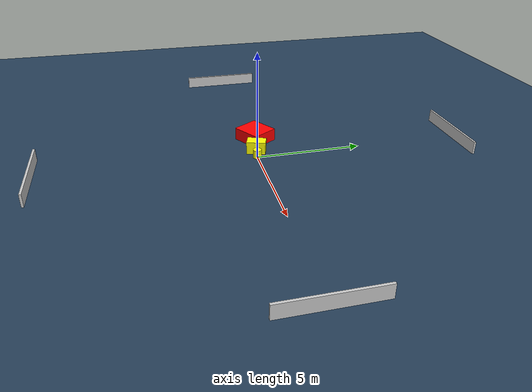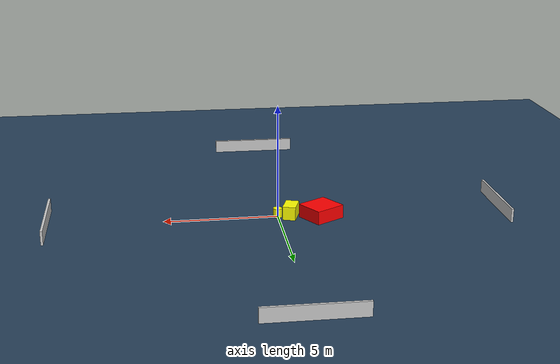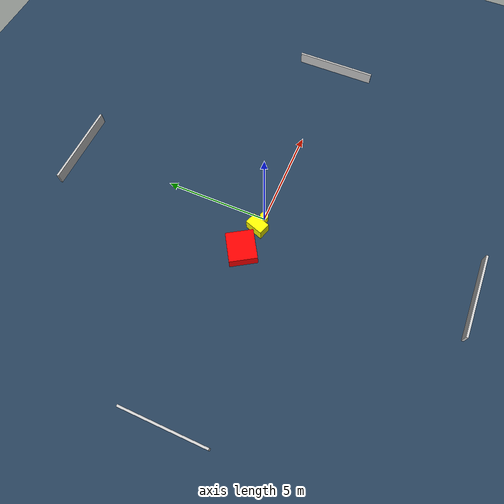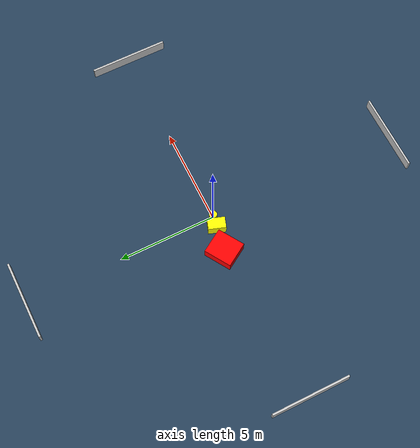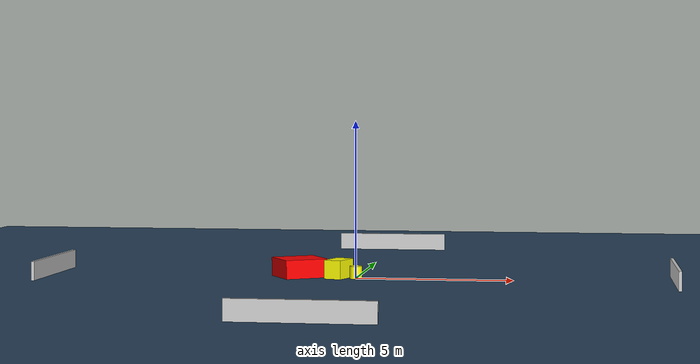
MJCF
<?xml version="1.0" ?>
<mujoco model="generated_environment">
  <option timestep="0.01" integrator="RK4" cone="elliptic"/>
  <default>
    <geom density="1"/>
  </default>
  <asset>
    <texture builtin="gradient" height="3072" name="skybox" rgb1="0.3 0.5 0.7" rgb2="0 0 0" type="skybox" width="512"/>
    <texture builtin="checker" height="300" name="groundplane" rgb1="0.2 0.3 0.4" rgb2="0.1 0.2 0.3" type="2d" width="300"/>
    <material name="groundplane" reflectance="0.2" texrepeat="5 5" texture="groundplane"/>
  </asset>
  <worldbody>
    <light dir="0 0 -1" directional="true" pos="0 0 1.5"/>
    <geom condim="3" friction="0.5 0.005 0.001" material="groundplane" name="floor" pos="0 0 0" size="0 0 0.05" type="plane"/>
    <body name="walls">
      <geom name="wall_1" condim="4" pos="-10.0 0.0 0.3" rgba="0.800000011920929 0.800000011920929 0.800000011920929 1.0" size="0.05 2.0 0.3" type="box"/>
      <geom name="wall_2" condim="4" pos="10.0 0.0 0.3" rgba="0.800000011920929 0.800000011920929 0.800000011920929 1.0" size="0.05 2.0 0.3" type="box"/>
      <geom name="wall_3" condim="4" pos="0.0 -10.0 0.3" rgba="0.800000011920929 0.800000011920929 0.800000011920929 1.0" size="2.0 0.05 0.3" type="box"/>
      <geom name="wall_4" condim="4" pos="0.0 10.0 0.3" rgba="0.800000011920929 0.800000011920929 0.800000011920929 1.0" size="2.0 0.05 0.3" type="box"/>
    </body>
    <body name="robot">
      <joint name="joint_x" type="slide" pos="0 0 0" axis="1 0 0"/>
      <joint name="joint_y" type="slide" pos="0 0 0" axis="0 1 0"/>
      <geom name="robot" type="cylinder" pos="0.0 0.0 0.2" size="0.2 0.2 0.0" mass="5.0" friction="1.0 0.005 0.0001" condim="4" rgba="1.0 1.0 0.0 1.0"/>
    </body>
    <body name="obstacle_1_movable">
      <geom name="obstacle_1_movable" condim="4" pos="-0.5652289432014849 0.09181686451884023 0.3" euler="0 0 341.1066161238203" friction="0.0 0.005 0.001" rgba="1.0 1.0 0.0 1.0" size="0.28613948614973594 0.44662390515643136 0.3" type="box" mass="0.1"/>
      <joint type="free"/>
    </body>
    <body name="obstacle_2_static">
      <geom name="obstacle_2_static" condim="4" pos="-1.873268505773714 0.32492641995713084 0.3" euler="0 0 301.90994326951756" friction="0.0 0.005 0.001" rgba="1.0 0.0 0.0 1.0" size="0.6527621240645634 0.7151758264266028 0.3" type="box"/>
    </body>
  </worldbody>
  <actuator>
    <motor name="actuator_x" joint="joint_x" gear="1" ctrlrange="-1 1"/>
    <motor name="actuator_y" joint="joint_y" gear="1" ctrlrange="-1 1"/>
  </actuator>
</mujoco>
